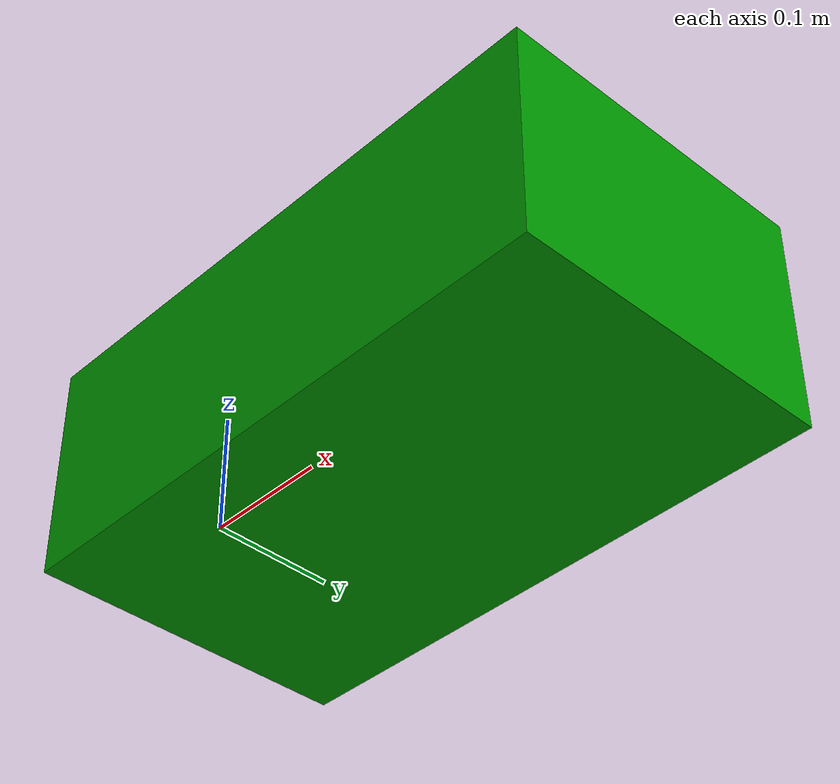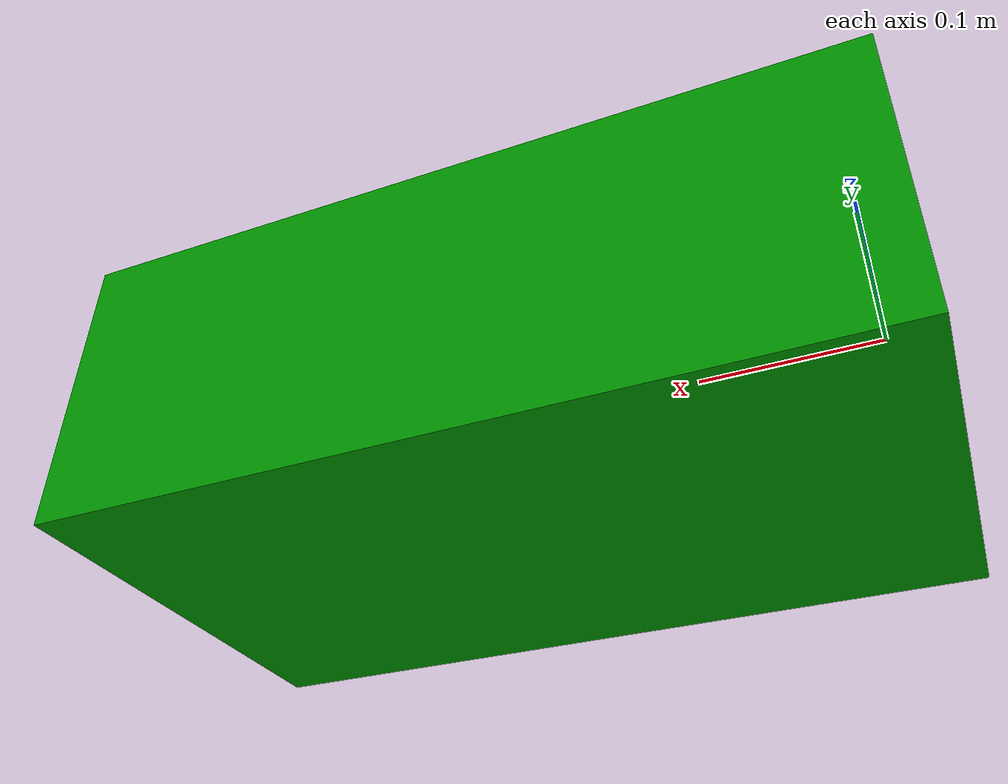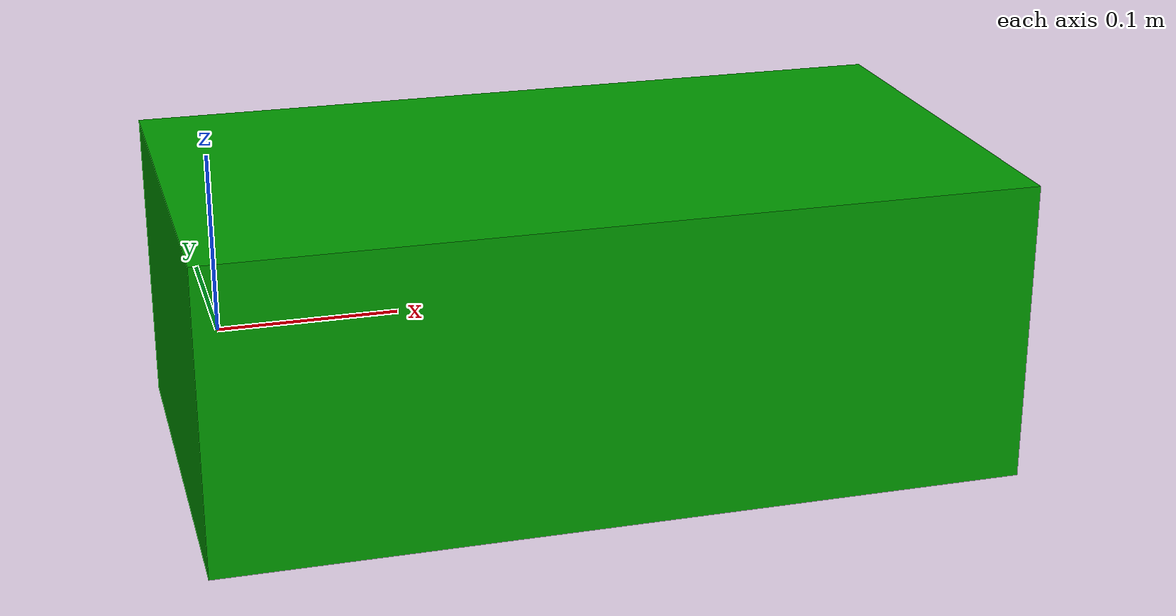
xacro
<?xml version="1.0"?>
<robot name="my_robot_with_zed" xmlns:xacro="http://www.ros.org/wiki/xacro">

    <!-- Materials -->
    <material name="grey">
        <color rgba="0.7 0.7 0.7 1" />
    </material>

    <material name="green">
        <color rgba="0 0.6 0 1" />
    </material>

    <material name="white">
        <color rgba="1 1 1 1" />
    </material>

    <!-- Base Links -->

    <link name="base_link">
        <visual>
            <geometry>
                <box size="0.45 0.25 0.17" />
            </geometry>
            <origin xyz="0.2 0 0.0" rpy="0 0 0" />
            <material name="green" />
        </visual>
    </link>

    <link name="/support_frame" />

    <!-- Joints -->

    <joint name="zed_camera_link_joint" type="fixed">
        <parent link="base_link" />
        <child link= "/support_frame" />
        <origin xyz="0.35 0.0 0.58" rpy="0 0 0" />
    </joint>
</robot>
